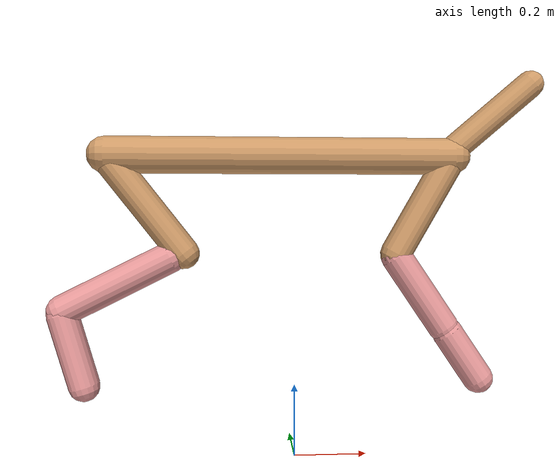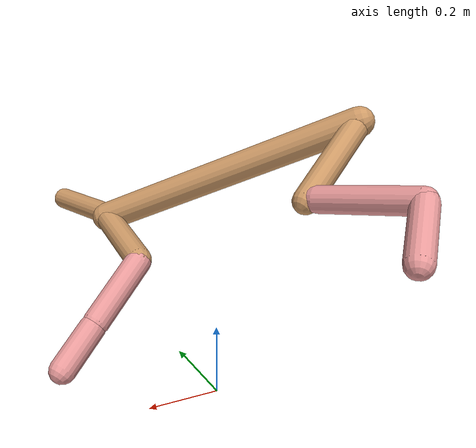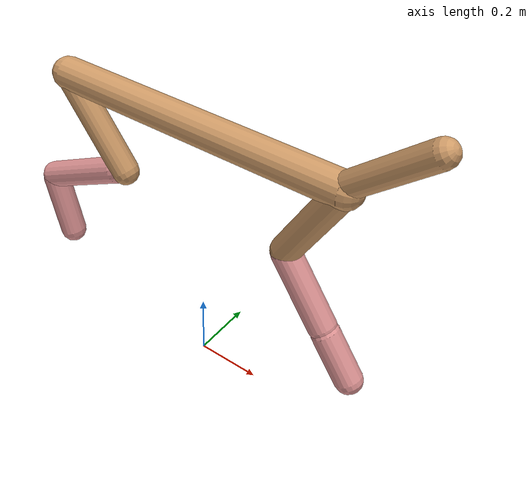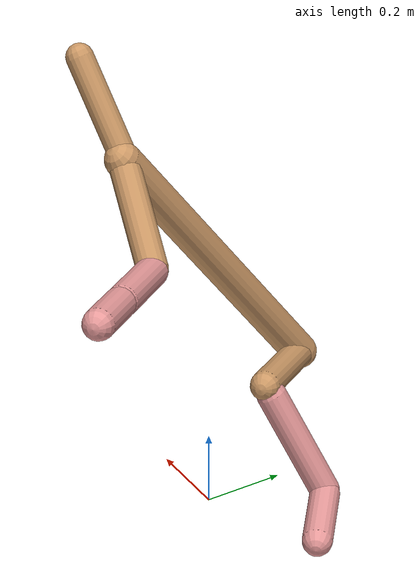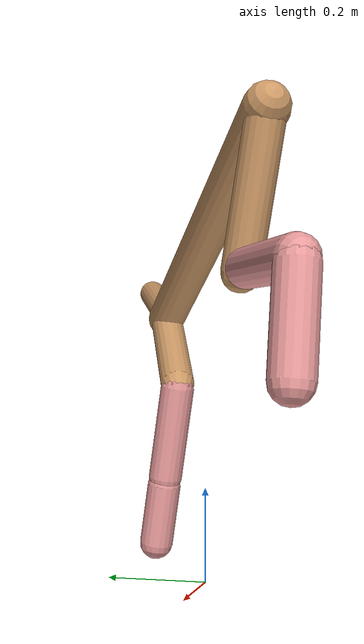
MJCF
<mujoco model="cheetah">
  <compiler angle="radian" coordinate="local" inertiafromgeom="true" settotalmass="14" />
  <default>
    <joint armature=".1" damping=".01" limited="true" solimplimit="0 .8 .03" solreflimit=".02 1" stiffness="8" />
    <geom conaffinity="0" condim="3" contype="1" friction="0.8 .1 .1" rgba="0.8 0.6 .4 1" solimp="0.0 0.8 0.01" solref="0.02 1" />
    <motor ctrllimited="true" ctrlrange="-1 1" />
  </default>
  <size nstack="300000" nuser_geom="1" />
  <option gravity="0 0 -9.81" timestep="0.01" />
  <worldbody>
    <body name="torso" pos="0.0 0.0 0.8275456435551968">
      <joint armature="0" axis="1 0 0" damping="0" limited="false" name="ignorex" pos="0 0 0" stiffness="0" type="slide" />
      <joint armature="0" axis="0 0 1" damping="0" limited="false" name="ignorez" pos="0 0 0" stiffness="0" type="slide" />
      <joint armature="0" axis="0 1 0" damping="0" limited="false" name="ignorey" pos="0 0 0" stiffness="0" type="hinge" />
      <geom fromto="-0.5 0.0 0.0 0.433567900275012 0.0 0.0" name="torso" size="0.049625236813576536" type="capsule" />
      <geom axisangle="0 1 0 .87" name="head" pos="0.533567900275012 0.0 0.1" size="0.037826967745611575 0.15" type="capsule" />

      <body name="bthigh" pos="-.5 0 0">
        <joint axis="0 1 0" damping="6" name="bthigh" pos="0 0 0" range="-.52 1.05" stiffness="240" type="hinge" />
        <geom axisangle="0 1 0 -3.8" name="bthigh" pos="0.10689230526689207 0.0 -0.1389599968469597" size="0.04232651742666376 0.15630422113148693" type="capsule" />
        <body name="bshin" pos="0.17378461053378413 0.0 -0.2679199936939194">
          <joint axis="0 1 0" damping="4.5" name="bshin" pos="0 0 0" range="-.785 .785" stiffness="180" type="hinge" />
          <geom axisangle="0 1 0 -2.03" name="bshin" pos="-0.15045945112387354 0.0 -0.07522972556193677" rgba="0.9 0.6 0.6 1" size="0.04232651742666376 0.16169402186015888" type="capsule" />
          <body name="bfoot" pos="-0.3009189022477471 0.0 -0.15045945112387354">
            <joint axis="0 1 0" damping="3" name="bfoot" pos="0 0 0" range="-.4 .785" stiffness="120" type="hinge" />
            <geom axisangle="0 1 0 -.27" name="bfoot" pos="0.03216527708995587 0.0 -0.10400106259085731" rgba="0.9 0.6 0.6 1" size="0.04232651742666376 0.10132825369903291" type="capsule" />
            <inertial mass="10" />
          </body>
        </body>
      </body>
      <body name="fthigh" pos="0.433567900275012 0.0 0.0">
        <joint axis="0 1 0" damping="4.5" name="fthigh" pos="0 0 0" range="-1.5 0.8" stiffness="180" type="hinge" />
        <geom axisangle="0 1 0 .52" name="fthigh" pos="-0.0789408490702564 0.0 -0.13532716983472526" size="0.04272161613237701 0.15074432070380875" type="capsule" />
        <body name="fshin" pos="-0.1578816981405128 0.0 -0.2706543396694505">
          <joint axis="0 1 0" damping="3" name="fshin" pos="0 0 0" range="-1.2 1.1" stiffness="120" type="hinge" />
          <geom axisangle="0 1 0 -.6" name="fshin" pos="0.07328006021492692 0.0 -0.10146469875912958" rgba="0.9 0.6 0.6 1" size="0.04272161613237701 0.12014209018499043" type="capsule" />
          <body name="ffoot" pos="0.14656012042985384 0.0 -0.20292939751825917">
            <joint axis="0 1 0" damping="1.5" name="ffoot" pos="0 0 0" range="-3.1 -0.3" stiffness="60" type="hinge" />
            <geom axisangle="0 1 0 -.6" name="ffoot" pos="0.05005019795962414 0.0 -0.07785586349274867" rgba="0.9 0.6 0.6 1" size="0.04272161613237701 0.07933911615989934" type="capsule" />
            <inertial mass="10" />
          </body>
        </body>
      </body>
    </body>
  </worldbody>
  <actuator>
    <motor gear="120" joint="bthigh" name="bthigh" />
    <motor gear="90" joint="bshin" name="bshin" />
    <motor gear="60" joint="bfoot" name="bfoot" />
    <motor gear="120" joint="fthigh" name="fthigh" />
    <motor gear="60" joint="fshin" name="fshin" />
    <motor gear="30" joint="ffoot" name="ffoot" />
  </actuator>
</mujoco>
